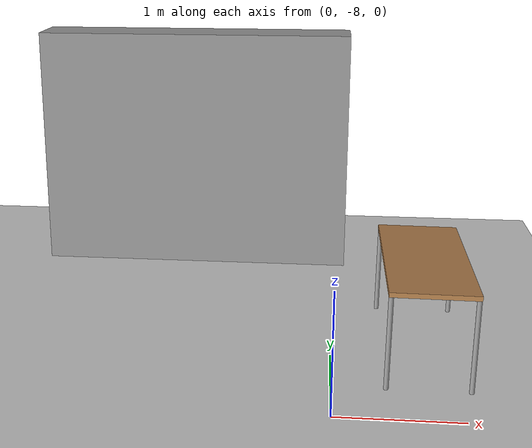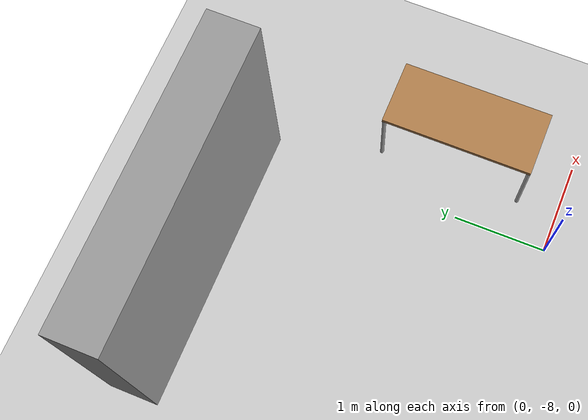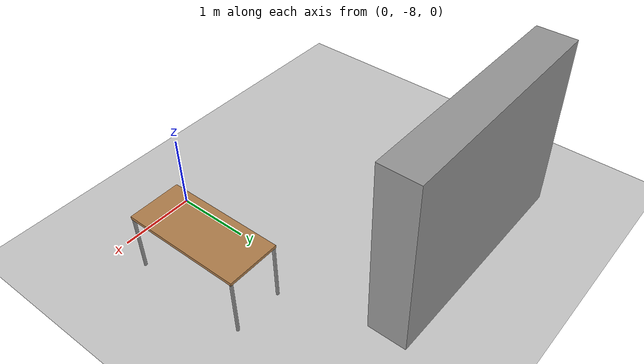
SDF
<sdf version="1.6">
 <world name="default">
  <model name="ground_plane">
   <static>1</static>
   <link name="link">
    <collision name="collision">
     <geometry><plane><normal>0 0 1</normal><size>100 100</size></plane></geometry>
     <surface><friction><ode><mu>100</mu><mu2>50</mu2></ode></friction></surface>
    </collision>
    <visual name="visual">
     <cast_shadows>0</cast_shadows>
     <geometry><plane><normal>0 0 1</normal><size>100 100</size></plane></geometry>
     <material>
      <script><uri>file://media/materials/scripts/gazebo.material</uri><name>Gazebo/Grey</name></script>
     </material>
    </visual>
   </link>
  </model>
  <model name="clf_cabinet_1">
   <link name="link">
    <inertial>
     <mass>1</mass>
     <inertia>
      <ixx>0.166667</ixx>
      <ixy>0</ixy>
      <ixz>0</ixz>
      <iyy>0.166667</iyy>
      <iyz>0</iyz>
      <izz>0.166667</izz>
     </inertia>
    </inertial>
    <visual name="visual">
     <geometry><box><size>3.13719 0.522097 2.4</size></box></geometry>
     <material>
      <script><name>Gazebo/Grey</name><uri>file://media/materials/scripts/gazebo.material</uri></script>
      <ambient>0.3 0.3 0.3 1</ambient>
      <diffuse>0.7 0.7 0.7 1</diffuse>
      <specular>0.01 0.01 0.01 1</specular>
      <emissive>0 0 0 1</emissive>
     </material>
    </visual>
    <collision name="collision">
     <geometry><box><size>3.13719 0.522097 2.4</size></box></geometry>
     <surface>
      <friction>
       <ode><mu>1</mu><mu2>1</mu2><fdir1>0 0 0</fdir1><slip1>0</slip1><slip2>0</slip2></ode>
       <torsional>
        <coefficient>1</coefficient>
        <patch_radius>0</patch_radius>
        <surface_radius>0</surface_radius>
        <use_patch_radius>1</use_patch_radius>
        <ode><slip>0</slip></ode>
       </torsional>
      </friction>
      <bounce><restitution_coefficient>0</restitution_coefficient><threshold>1e+06</threshold></bounce>
      <contact>
       <collide_without_contact>0</collide_without_contact>
       <collide_without_contact_bitmask>1</collide_without_contact_bitmask>
       <collide_bitmask>1</collide_bitmask>
       <ode>
        <soft_cfm>0</soft_cfm>
        <soft_erp>0.2</soft_erp>
        <kp>1e+13</kp>
        <kd>1</kd>
        <max_vel>0.01</max_vel>
        <min_depth>0</min_depth>
       </ode>
       <bullet>
        <split_impulse>1</split_impulse>
        <split_impulse_penetration_threshold>-0.01</split_impulse_penetration_threshold>
        <soft_cfm>0</soft_cfm>
        <soft_erp>0.2</soft_erp>
        <kp>1e+13</kp>
        <kd>1</kd>
       </bullet>
      </contact>
     </surface>
    </collision>
   </link>
   <static>0</static>
   <pose>-1.42949 -4.63345 1.19998 -1e-06 -1.4e-05 0.000439</pose>
  </model>
  <model name="table_mod_7">
   <link name="link">
    <inertial>
     <inertia><ixx>1</ixx><ixy>0</ixy><ixz>0</ixz><iyy>1</iyy><iyz>0</iyz><izz>1</izz></inertia>
     <mass>1</mass>
    </inertial>
    <visual name="visual1">
     <pose>0 0 0.8 0 -0 0</pose>
     <geometry><box><size>1.6 0.7 0.04</size></box></geometry>
     <material>
      <script><uri>file://media/materials/scripts/gazebo.material</uri><name>Gazebo/Wood</name></script>
      <ambient>1 1 1 1</ambient>
      <diffuse>1 1 1 1</diffuse>
      <specular>0.2 0.2 0.2 1</specular>
      <emissive>0 0 0 1</emissive>
     </material>
    </visual>
    <visual name="front_right_leg">
     <pose>0.78 -0.33 0.4 0 -0 0</pose>
     <geometry><cylinder><radius>0.02</radius><length>0.8</length></cylinder></geometry>
     <material>
      <script><uri>file://media/materials/scripts/gazebo.material</uri><name>Gazebo/Grey</name></script>
      <ambient>0.3 0.3 0.3 1</ambient>
      <diffuse>0.7 0.7 0.7 1</diffuse>
      <specular>0.01 0.01 0.01 1</specular>
      <emissive>0 0 0 1</emissive>
     </material>
    </visual>
    <visual name="front_left_leg">
     <pose>0.78 0.33 0.4 0 -0 0</pose>
     <geometry><cylinder><radius>0.02</radius><length>0.8</length></cylinder></geometry>
     <material>
      <script><uri>file://media/materials/scripts/gazebo.material</uri><name>Gazebo/Grey</name></script>
      <ambient>0.3 0.3 0.3 1</ambient>
      <diffuse>0.7 0.7 0.7 1</diffuse>
      <specular>0.01 0.01 0.01 1</specular>
      <emissive>0 0 0 1</emissive>
     </material>
    </visual>
    <visual name="back_left_leg">
     <pose>-0.78 0.33 0.4 0 -0 0</pose>
     <geometry><cylinder><radius>0.02</radius><length>0.8</length></cylinder></geometry>
     <material>
      <script><uri>file://media/materials/scripts/gazebo.material</uri><name>Gazebo/Grey</name></script>
      <ambient>0.3 0.3 0.3 1</ambient>
      <diffuse>0.7 0.7 0.7 1</diffuse>
      <specular>0.01 0.01 0.01 1</specular>
      <emissive>0 0 0 1</emissive>
     </material>
    </visual>
    <visual name="back_right_leg">
     <pose>-0.78 -0.33 0.4 0 -0 0</pose>
     <geometry><cylinder><radius>0.02</radius><length>0.8</length></cylinder></geometry>
     <material>
      <script><uri>file://media/materials/scripts/gazebo.material</uri><name>Gazebo/Grey</name></script>
      <ambient>0.3 0.3 0.3 1</ambient>
      <diffuse>0.7 0.7 0.7 1</diffuse>
      <specular>0.01 0.01 0.01 1</specular>
      <emissive>0 0 0 1</emissive>
     </material>
    </visual>
    <collision name="surface">
     <pose>0 0 0.8 0 -0 0</pose>
     <geometry><box><size>1.6 0.7 0.03</size></box></geometry>
     <surface>
      <friction>
       <ode><mu>0.6</mu><mu2>0.6</mu2><fdir1>0 0 0</fdir1><slip1>0</slip1><slip2>0</slip2></ode>
       <torsional>
        <coefficient>1</coefficient>
        <patch_radius>0</patch_radius>
        <surface_radius>0</surface_radius>
        <use_patch_radius>1</use_patch_radius>
        <ode><slip>0</slip></ode>
       </torsional>
      </friction>
      <bounce><restitution_coefficient>0</restitution_coefficient><threshold>1e+06</threshold></bounce>
      <contact>
       <collide_without_contact>0</collide_without_contact>
       <collide_without_contact_bitmask>1</collide_without_contact_bitmask>
       <collide_bitmask>1</collide_bitmask>
       <ode>
        <soft_cfm>0</soft_cfm>
        <soft_erp>0.2</soft_erp>
        <kp>1e+13</kp>
        <kd>1</kd>
        <max_vel>0.01</max_vel>
        <min_depth>0</min_depth>
       </ode>
       <bullet>
        <split_impulse>1</split_impulse>
        <split_impulse_penetration_threshold>-0.01</split_impulse_penetration_threshold>
        <soft_cfm>0</soft_cfm>
        <soft_erp>0.2</soft_erp>
        <kp>1e+13</kp>
        <kd>1</kd>
       </bullet>
      </contact>
     </surface>
    </collision>
    <collision name="front_left_leg">
     <pose>0.78 0.33 0.4 0 -0 0</pose>
     <geometry><cylinder><radius>0.02</radius><length>0.8</length></cylinder></geometry>
     <surface>
      <friction>
       <ode><mu>1</mu><mu2>1</mu2><fdir1>0 0 0</fdir1><slip1>0</slip1><slip2>0</slip2></ode>
       <torsional>
        <coefficient>1</coefficient>
        <patch_radius>0</patch_radius>
        <surface_radius>0</surface_radius>
        <use_patch_radius>1</use_patch_radius>
        <ode><slip>0</slip></ode>
       </torsional>
      </friction>
      <bounce><restitution_coefficient>0</restitution_coefficient><threshold>1e+06</threshold></bounce>
      <contact>
       <collide_without_contact>0</collide_without_contact>
       <collide_without_contact_bitmask>1</collide_without_contact_bitmask>
       <collide_bitmask>1</collide_bitmask>
       <ode>
        <soft_cfm>0</soft_cfm>
        <soft_erp>0.2</soft_erp>
        <kp>1e+13</kp>
        <kd>1</kd>
        <max_vel>0.01</max_vel>
        <min_depth>0</min_depth>
       </ode>
       <bullet>
        <split_impulse>1</split_impulse>
        <split_impulse_penetration_threshold>-0.01</split_impulse_penetration_threshold>
        <soft_cfm>0</soft_cfm>
        <soft_erp>0.2</soft_erp>
        <kp>1e+13</kp>
        <kd>1</kd>
       </bullet>
      </contact>
     </surface>
    </collision>
    <collision name="front_right_leg">
     <pose>0.78 -0.33 0.4 0 -0 0</pose>
     <geometry><cylinder><radius>0.02</radius><length>0.8</length></cylinder></geometry>
     <surface>
      <friction>
       <ode><mu>1</mu><mu2>1</mu2><fdir1>0 0 0</fdir1><slip1>0</slip1><slip2>0</slip2></ode>
       <torsional>
        <coefficient>1</coefficient>
        <patch_radius>0</patch_radius>
        <surface_radius>0</surface_radius>
        <use_patch_radius>1</use_patch_radius>
        <ode><slip>0</slip></ode>
       </torsional>
      </friction>
      <bounce><restitution_coefficient>0</restitution_coefficient><threshold>1e+06</threshold></bounce>
      <contact>
       <collide_without_contact>0</collide_without_contact>
       <collide_without_contact_bitmask>1</collide_without_contact_bitmask>
       <collide_bitmask>1</collide_bitmask>
       <ode>
        <soft_cfm>0</soft_cfm>
        <soft_erp>0.2</soft_erp>
        <kp>1e+13</kp>
        <kd>1</kd>
        <max_vel>0.01</max_vel>
        <min_depth>0</min_depth>
       </ode>
       <bullet>
        <split_impulse>1</split_impulse>
        <split_impulse_penetration_threshold>-0.01</split_impulse_penetration_threshold>
        <soft_cfm>0</soft_cfm>
        <soft_erp>0.2</soft_erp>
        <kp>1e+13</kp>
        <kd>1</kd>
       </bullet>
      </contact>
     </surface>
    </collision>
    <collision name="back_right_leg">
     <pose>-0.78 -0.33 0.4 0 -0 0</pose>
     <geometry><cylinder><radius>0.02</radius><length>0.8</length></cylinder></geometry>
     <surface>
      <friction>
       <ode><mu>1</mu><mu2>1</mu2><fdir1>0 0 0</fdir1><slip1>0</slip1><slip2>0</slip2></ode>
       <torsional>
        <coefficient>1</coefficient>
        <patch_radius>0</patch_radius>
        <surface_radius>0</surface_radius>
        <use_patch_radius>1</use_patch_radius>
        <ode><slip>0</slip></ode>
       </torsional>
      </friction>
      <bounce><restitution_coefficient>0</restitution_coefficient><threshold>1e+06</threshold></bounce>
      <contact>
       <collide_without_contact>0</collide_without_contact>
       <collide_without_contact_bitmask>1</collide_without_contact_bitmask>
       <collide_bitmask>1</collide_bitmask>
       <ode>
        <soft_cfm>0</soft_cfm>
        <soft_erp>0.2</soft_erp>
        <kp>1e+13</kp>
        <kd>1</kd>
        <max_vel>0.01</max_vel>
        <min_depth>0</min_depth>
       </ode>
       <bullet>
        <split_impulse>1</split_impulse>
        <split_impulse_penetration_threshold>-0.01</split_impulse_penetration_threshold>
        <soft_cfm>0</soft_cfm>
        <soft_erp>0.2</soft_erp>
        <kp>1e+13</kp>
        <kd>1</kd>
       </bullet>
      </contact>
     </surface>
    </collision>
    <collision name="back_left_leg">
     <pose>-0.78 0.33 0.4 0 -0 0</pose>
     <geometry><cylinder><radius>0.02</radius><length>0.8</length></cylinder></geometry>
     <surface>
      <friction>
       <ode><mu>1</mu><mu2>1</mu2><fdir1>0 0 0</fdir1><slip1>0</slip1><slip2>0</slip2></ode>
       <torsional>
        <coefficient>1</coefficient>
        <patch_radius>0</patch_radius>
        <surface_radius>0</surface_radius>
        <use_patch_radius>1</use_patch_radius>
        <ode><slip>0</slip></ode>
       </torsional>
      </friction>
      <bounce><restitution_coefficient>0</restitution_coefficient><threshold>1e+06</threshold></bounce>
      <contact>
       <collide_without_contact>0</collide_without_contact>
       <collide_without_contact_bitmask>1</collide_without_contact_bitmask>
       <collide_bitmask>1</collide_bitmask>
       <ode>
        <soft_cfm>0</soft_cfm>
        <soft_erp>0.2</soft_erp>
        <kp>1e+13</kp>
        <kd>1</kd>
        <max_vel>0.01</max_vel>
        <min_depth>0</min_depth>
       </ode>
       <bullet>
        <split_impulse>1</split_impulse>
        <split_impulse_penetration_threshold>-0.01</split_impulse_penetration_threshold>
        <soft_cfm>0</soft_cfm>
        <soft_erp>0.2</soft_erp>
        <kp>1e+13</kp>
        <kd>1</kd>
       </bullet>
      </contact>
     </surface>
    </collision>
   </link>
   <static>0</static>
   <pose>0.757972 -6.76648 0.003163 -0.009036 -0 -1.57079</pose>
  </model>
 </world>
</sdf>
